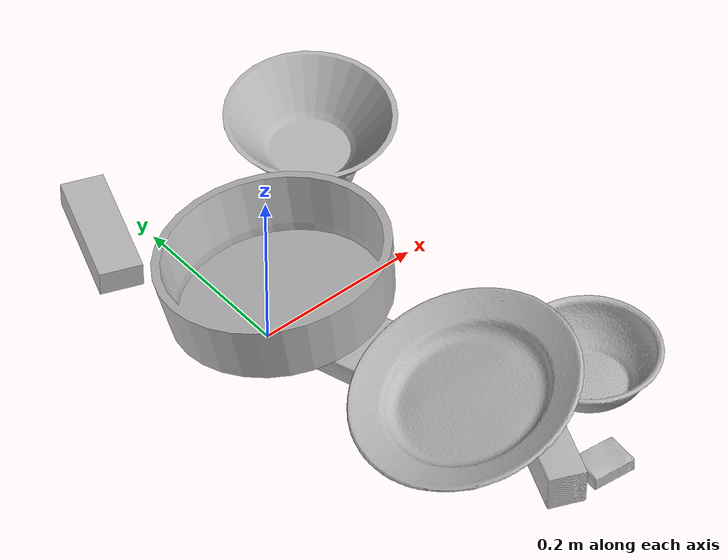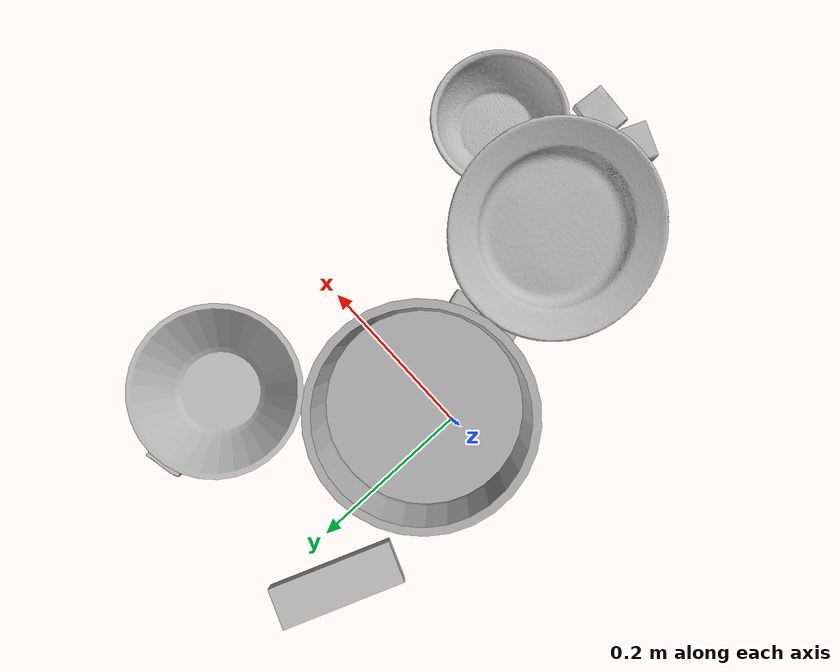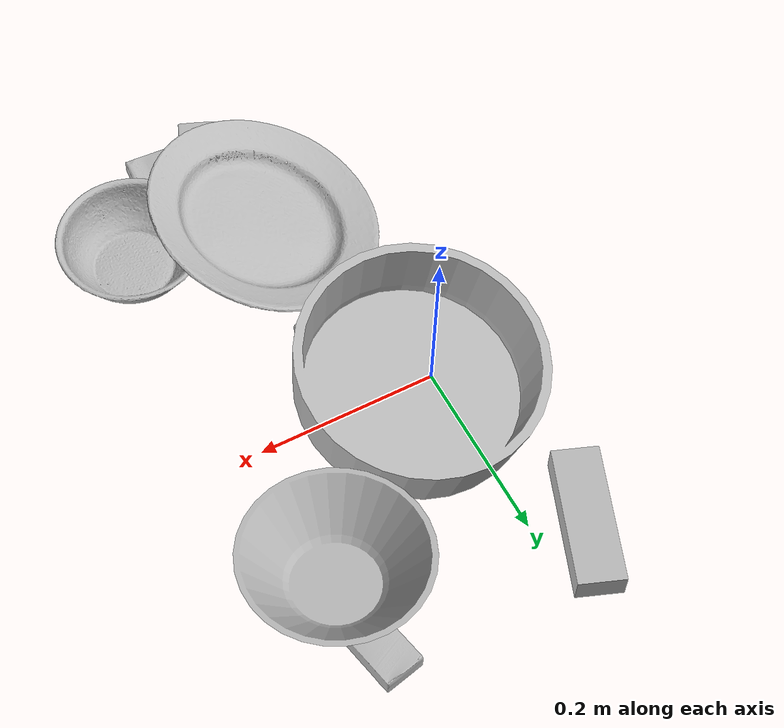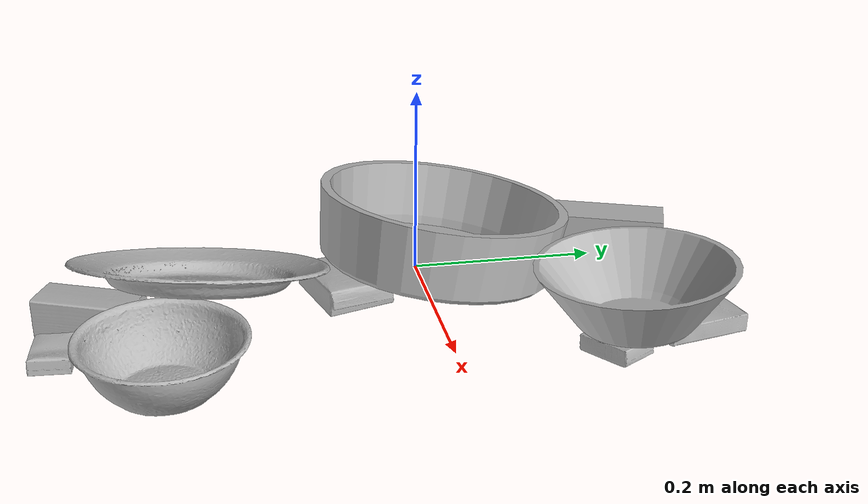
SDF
<sdf version="1.4">
  <world name="default">
    <light name="light1" type="point">
      <pose>0 0 1 0 0 0</pose>
      <diffuse>3 3 3 1</diffuse>
      <specular>3 3 3 1</specular>
    </light>
    <light name="light2" type="point">
      <pose>0 0.5 2 0 0 0</pose>
      <diffuse>1 1 1 1</diffuse>
      <specular>1 1 1 1</specular>
    </light>
    <light name="light3" type="point">
      <pose>0 0.5 2 0 0 0</pose>
      <diffuse>3 3 3 1</diffuse>
      <specular>3 3 3 1</specular>
    </light>
    <scene>
      <ambient>0.7 0.7 0.7</ambient>
    </scene>
    <model name="box1">
      <link name="link_box1">
        <collision name="default">
          <geometry>
            <mesh>
              <uri>model://jenga/collision_meshes/collision.obj</uri>
              <scale>1.0 1.0 1.0</scale>
            </mesh>
          </geometry>
          <surface>
            <friction>
              <ode>
                <mu>0.5</mu>
                <mu2>0.5</mu2>
              </ode>
            </friction>
          <contact>
        <ode>
            <max_vel>0</max_vel>
            <min_depth>0.0001</min_depth>
            <kp>1e8</kp>
        </ode>
    </contact></surface>
        </collision>
        <visual name="default">
          <geometry>
            <mesh>
              <uri>model://jenga/visual_meshes/visual.dae</uri>
              <scale>1.0 1.0 1.0</scale>
            </mesh>
          </geometry>
        </visual>
        <inertial>
          <mass>0.21843092143535614</mass>
          <pose>-2.502855807051674e-07 -0.00010250011109746993 -4.092339804628864e-05 0.0 -7.342154049184251e-07 0.0</pose>
          <inertia>
            <ixx>6.0445138e-05</ixx>
            <iyy>0.0004095746</iyy>
            <izz>0.00043725572</izz>
            <ixy>0</ixy>
            <ixz>0</ixz>
            <iyz>0</iyz>
          </inertia>
        </inertial>
      </link>
      <pose>-0.0501747690141201 0.22801361978054047 0.015000002458691597 -3.51672856505015e-09 -8.357439736012389e-10 -1.9365927802648146</pose>
    </model>
    <model name="box11">
      <link name="link_box11">
        <collision name="default">
          <geometry>
            <mesh>
              <uri>model://pudding_box/collision_meshes/collision.obj</uri>
              <scale>0.5 0.5 0.5</scale>
            </mesh>
          </geometry>
          <surface>
            <friction>
              <ode>
                <mu>0.5</mu>
                <mu2>0.5</mu2>
              </ode>
            </friction>
          <contact>
        <ode>
            <max_vel>0</max_vel>
            <min_depth>0.0001</min_depth>
            <kp>1e8</kp>
        </ode>
    </contact></surface>
        </collision>
        <visual name="default">
          <geometry>
            <mesh>
              <uri>model://pudding_box/visual_meshes/visual.dae</uri>
              <scale>0.5 0.5 0.5</scale>
            </mesh>
          </geometry>
        </visual>
        <inertial>
          <mass>0.04130476340651512</mass>
          <pose>0.00024474109522998333 0.00040339428232982755 -0.0002594413817860186 0.005213101341234124 -0.006603795469139562 0.020079830758209564</pose>
          <inertia>
            <ixx>1.1673226e-05</ixx>
            <iyy>7.85383e-06</iyy>
            <izz>1.723857e-05</izz>
            <ixy>0</ixy>
            <ixz>0</ixz>
            <iyz>0</iyz>
          </inertia>
        </inertial>
      </link>
      <pose>0.22547860443592072 0.15159814059734344 0.009963927790522575 0.03608572093245335 0.0008965879068923443 -1.0201817589534583</pose>
    </model>
    <model name="box2">
      <link name="link_box2">
        <collision name="default">
          <geometry>
            <mesh>
              <uri>model://gelatin_box/collision_meshes/collision.obj</uri>
              <scale>1.0 1.0 1.0</scale>
            </mesh>
          </geometry>
          <surface>
            <friction>
              <ode>
                <mu>0.5</mu>
                <mu2>0.5</mu2>
              </ode>
            </friction>
          <contact>
        <ode>
            <max_vel>0</max_vel>
            <min_depth>0.0001</min_depth>
            <kp>1e8</kp>
        </ode>
    </contact></surface>
        </collision>
        <visual name="default">
          <geometry>
            <mesh>
              <uri>model://gelatin_box/visual_meshes/visual.dae</uri>
              <scale>1.0 1.0 1.0</scale>
            </mesh>
          </geometry>
        </visual>
        <inertial>
          <mass>0.24153950810432434</mass>
          <pose>0.0004319618456065655 0.00011156871914863586 -0.0003640321083366871 -0.001050371984258798 -0.004755819621622892 0.016440559472145032</pose>
          <inertia>
            <ixx>0.00017050719</ixx>
            <iyy>0.00012179239</iyy>
            <izz>0.0002595499</izz>
            <ixy>0</ixy>
            <ixz>0</ixz>
            <iyz>0</iyz>
          </inertia>
        </inertial>
      </link>
      <pose>0.056731123477220535 -0.08559157699346542 0.015427639707922935 -0.006811450074111006 0.012805948338804178 1.8418832904924747</pose>
    </model>
    <model name="box21">
      <link name="link_box21">
        <collision name="default">
          <geometry>
            <mesh>
              <uri>model://cracker_box/collision_meshes/collision.obj</uri>
              <scale>0.25 0.25 0.25</scale>
            </mesh>
          </geometry>
          <surface>
            <friction>
              <ode>
                <mu>0.5</mu>
                <mu2>0.5</mu2>
              </ode>
            </friction>
          <contact>
        <ode>
            <max_vel>0</max_vel>
            <min_depth>0.0001</min_depth>
            <kp>1e8</kp>
        </ode>
    </contact></surface>
        </collision>
        <visual name="default">
          <geometry>
            <mesh>
              <uri>model://cracker_box/visual_meshes/visual.dae</uri>
              <scale>0.25 0.25 0.25</scale>
            </mesh>
          </geometry>
        </visual>
        <inertial>
          <mass>0.04855586588382721</mass>
          <pose>0.00023660322767682374 6.358561222441494e-05 -0.00042573834070935845 -0.00031620783521113603 -0.01110649053142329 0.0025467954689779603</pose>
          <inertia>
            <ixx>7.719027e-06</ixx>
            <iyy>1.2745631e-05</iyy>
            <izz>1.8189185e-05</izz>
            <ixy>0</ixy>
            <ixz>0</ixz>
            <iyz>0</iyz>
          </inertia>
        </inertial>
      </link>
      <pose>0.1480853408575058 -0.3777012228965759 0.009120449423789978 -0.01178816536858491 -0.007367107887275249 3.065392168911248</pose>
    </model>
    <model name="box3">
      <link name="link_box3">
        <collision name="default">
          <geometry>
            <mesh>
              <uri>model://wood_block/collision_meshes/collision.obj</uri>
              <scale>0.5 0.5 0.5</scale>
            </mesh>
          </geometry>
          <surface>
            <friction>
              <ode>
                <mu>0.5</mu>
                <mu2>0.5</mu2>
              </ode>
            </friction>
          <contact>
        <ode>
            <max_vel>0</max_vel>
            <min_depth>0.0001</min_depth>
            <kp>1e8</kp>
        </ode>
    </contact></surface>
        </collision>
        <visual name="default">
          <geometry>
            <mesh>
              <uri>model://wood_block/visual_meshes/visual.dae</uri>
              <scale>0.5 0.5 0.5</scale>
            </mesh>
          </geometry>
        </visual>
        <inertial>
          <mass>0.17342756688594818</mass>
          <pose>-2.906657982748584e-06 -0.000285404734313488 0.00013204291462898254 -0.052208426481931185 -0.005192696107352816 -0.006861379630616638</pose>
          <inertia>
            <ixx>5.8018082e-05</ixx>
            <iyy>0.00018327912</iyy>
            <izz>0.00018259356</izz>
            <ixy>0</ixy>
            <ixz>0</ixz>
            <iyz>0</iyz>
          </inertia>
        </inertial>
      </link>
      <pose>0.10426643490791321 -0.34428682923316956 0.022629259154200554 -0.005209647713752577 0.005718415694948676 -1.9667497977964576</pose>
    </model>
    <model name="box31">
      <link name="link_box31">
        <collision name="default">
          <geometry>
            <mesh>
              <uri>model://sugar_box/collision_meshes/collision.obj</uri>
              <scale>0.5 0.5 0.5</scale>
            </mesh>
          </geometry>
          <surface>
            <friction>
              <ode>
                <mu>0.5</mu>
                <mu2>0.5</mu2>
              </ode>
            </friction>
          <contact>
        <ode>
            <max_vel>0</max_vel>
            <min_depth>0.0001</min_depth>
            <kp>1e8</kp>
        </ode>
    </contact></surface>
        </collision>
        <visual name="default">
          <geometry>
            <mesh>
              <uri>model://sugar_box/visual_meshes/visual.dae</uri>
              <scale>0.5 0.5 0.5</scale>
            </mesh>
          </geometry>
        </visual>
        <inertial>
          <mass>0.102778859436512</mass>
          <pose>0.0005171863595023751 1.924554817378521e-05 -0.00018182402709499002 -0.00040462592244169 0.0010506634051582892 0.0026153783234817013</pose>
          <inertia>
            <ixx>2.1408765e-05</ixx>
            <iyy>6.919753e-05</iyy>
            <izz>8.2837694e-05</izz>
            <ixy>0</ixy>
            <ixz>0</ixz>
            <iyz>0</iyz>
          </inertia>
        </inertial>
      </link>
      <pose>0.19799458980560303 0.24494022130966187 0.011745535768568516 0.0013598588246920447 0.0009209703726613497 -1.3605338076197713</pose>
    </model>
    <model name="plate1">
      <link name="link_plate1">
        <collision name="default">
          <geometry>
            <mesh>
              <uri>model://pan_tefal/collision_meshes/collision.obj</uri>
              <scale>1.0 1.0 1.0</scale>
            </mesh>
          </geometry>
          <surface>
            <friction>
              <ode>
                <mu>0.5</mu>
                <mu2>0.5</mu2>
              </ode>
            </friction>
          <contact>
        <ode>
            <max_vel>0</max_vel>
            <min_depth>0.0001</min_depth>
            <kp>1e8</kp>
        </ode>
    </contact></surface>
        </collision>
        <visual name="default">
          <geometry>
            <mesh>
              <uri>model://pan_tefal/visual_meshes/visual.dae</uri>
              <scale>1.0 1.0 1.0</scale>
            </mesh>
          </geometry>
        </visual>
        <inertial>
          <mass>1.4199398756027222</mass>
          <pose>-0.00018002341676037759 3.278919029980898e-05 -0.00851493515074253 0.0008190238651519852 -0.0003301374854212985 -0.3318555266382279</pose>
          <inertia>
            <ixx>0.009801778</ixx>
            <iyy>0.009864969</iyy>
            <izz>0.01804318</izz>
            <ixy>0</ixy>
            <ixz>0</ixz>
            <iyz>0</iyz>
          </inertia>
        </inertial>
      </link>
      <pose>0.030310992151498795 0.020073434337973595 0.05627339705824852 -0.12685322074772634 -0.10690333623149048 -0.2800599895716589</pose>
    </model>
    <model name="bowl1">
      <link name="link_bowl1">
        <collision name="default">
          <geometry>
            <mesh>
              <uri>model://bowl/collision_meshes/collision.obj</uri>
              <scale>1.0 1.0 1.0</scale>
            </mesh>
          </geometry>
          <surface>
            <friction>
              <ode>
                <mu>0.5</mu>
                <mu2>0.5</mu2>
              </ode>
            </friction>
          <contact>
        <ode>
            <max_vel>0</max_vel>
            <min_depth>0.0001</min_depth>
            <kp>1e8</kp>
        </ode>
    </contact></surface>
        </collision>
        <visual name="default">
          <geometry>
            <mesh>
              <uri>model://bowl/visual_meshes/visual.dae</uri>
              <scale>1.0 1.0 1.0</scale>
            </mesh>
          </geometry>
        </visual>
        <inertial>
          <mass>0.10393582284450531</mass>
          <pose>0.00020445296831894666 -0.001030207728035748 -0.0008042644476518035 -0.01576405922653839 0.014546845721322095 0.7140430703653545</pose>
          <inertia>
            <ixx>0.00023874876</ixx>
            <iyy>0.00023341418</iyy>
            <izz>0.00040165734</izz>
            <ixy>0</ixy>
            <ixz>0</ixz>
            <iyz>0</iyz>
          </inertia>
        </inertial>
      </link>
      <pose>0.2189575582742691 -0.2745532691478729 0.027780156582593918 3.8326485842667514e-06 -1.8322620626388143e-05 -0.4473456395719484</pose>
    </model>
    <model name="plate2">
      <link name="link_plate2">
        <collision name="default">
          <geometry>
            <mesh>
              <uri>model://plate/collision_meshes/collision.obj</uri>
              <scale>1.0 1.0 1.0</scale>
            </mesh>
          </geometry>
          <surface>
            <friction>
              <ode>
                <mu>0.5</mu>
                <mu2>0.5</mu2>
              </ode>
            </friction>
          <contact>
        <ode>
            <max_vel>0</max_vel>
            <min_depth>0.0001</min_depth>
            <kp>1e8</kp>
        </ode>
    </contact></surface>
        </collision>
        <visual name="default">
          <geometry>
            <mesh>
              <uri>model://plate/visual_meshes/visual.dae</uri>
              <scale>1.0 1.0 1.0</scale>
            </mesh>
          </geometry>
        </visual>
        <inertial>
          <mass>0.11643410474061966</mass>
          <pose>-0.0006044629844836891 0.000278257648460567 -0.001056199660524726 0.0022187586917557377 -0.0032254970862864826 0.45261837235677477</pose>
          <inertia>
            <ixx>0.00054468104</ixx>
            <iyy>0.0005394714</iyy>
            <izz>0.0010653147</izz>
            <ixy>0</ixy>
            <ixz>0</ixz>
            <iyz>0</iyz>
          </inertia>
        </inertial>
      </link>
      <pose>0.0802215039730072 -0.23625613749027252 0.047530606389045715 -0.07425235345538239 0.30743996746220453 2.619479448175673</pose>
    </model>
    <model name="bowl2">
      <link name="link_bowl2">
        <collision name="default">
          <geometry>
            <mesh>
              <uri>model://bowl_a/collision_meshes/collision.obj</uri>
              <scale>1.0 1.0 1.0</scale>
            </mesh>
          </geometry>
          <surface>
            <friction>
              <ode>
                <mu>0.5</mu>
                <mu2>0.5</mu2>
              </ode>
            </friction>
          <contact>
        <ode>
            <max_vel>0</max_vel>
            <min_depth>0.0001</min_depth>
            <kp>1e8</kp>
        </ode>
    </contact></surface>
        </collision>
        <visual name="default">
          <geometry>
            <mesh>
              <uri>model://bowl_a/visual_meshes/visual.dae</uri>
              <scale>1.0 1.0 1.0</scale>
            </mesh>
          </geometry>
        </visual>
        <inertial>
          <mass>0.4875580668449402</mass>
          <pose>0.00027867365861311555 4.73092841275502e-05 -0.0013765289913862944 -0.0009805446644095745 -0.0010938154105800495 -0.1912289991244328</pose>
          <inertia>
            <ixx>0.0013881001</ixx>
            <iyy>0.0013966226</iyy>
            <izz>0.0024687892</izz>
            <ixy>0</ixy>
            <ixz>0</ixz>
            <iyz>0</iyz>
          </inertia>
        </inertial>
      </link>
      <pose>0.205264613032341 0.1750766634941101 0.05118034780025482 0.02028687809977126 0.067571724461703 -1.746654213957647</pose>
    </model>
  <physics type="ode">
      <max_contacts>50</max_contacts>
      <ode>
        <solver>
          <type>quick</type>
          <iters>75</iters>
        </solver>
        <constraints>
          <contact_max_correcting_vel>0</contact_max_correcting_vel>
          <contact_surface_layer>0</contact_surface_layer>
        </constraints>
      </ode>
    </physics></world>
</sdf>
